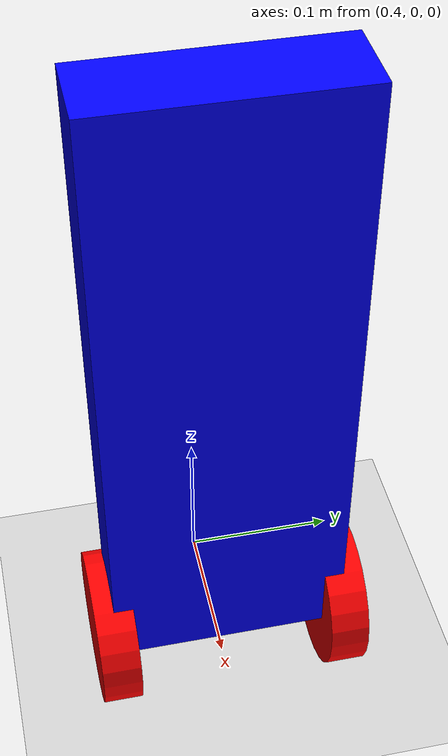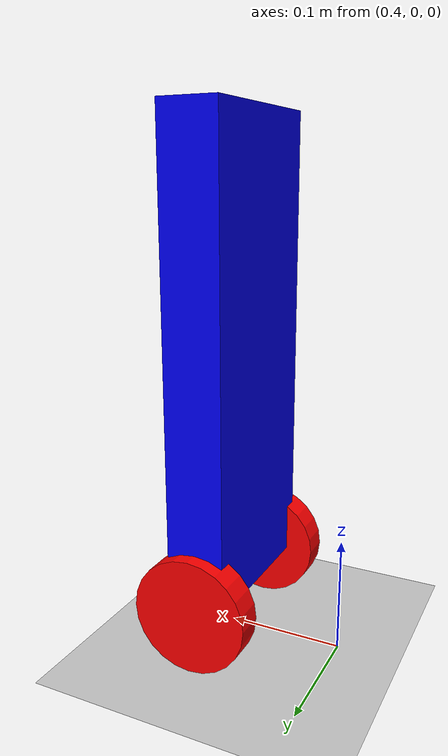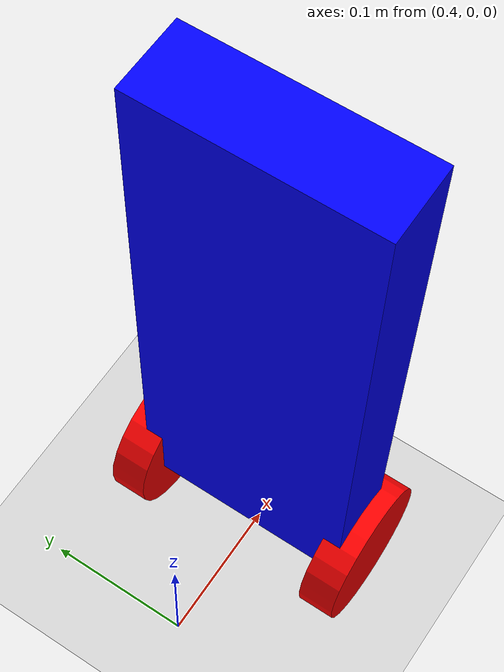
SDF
<?xml version="1.0" ?>
<sdf version="1.8">
    <world name="balancing_robot_world">
        <physics name="1ms" type="ignored">
            <max_step_size>0.001</max_step_size>
            <real_time_factor>1.0</real_time_factor>
        </physics>
        <plugin
            filename="libignition-gazebo-physics-system.so"
            name="ignition::gazebo::systems::Physics">
        </plugin>
        <plugin
            filename="libignition-gazebo-user-commands-system.so"
            name="ignition::gazebo::systems::UserCommands">
        </plugin>
        <plugin
            filename="libignition-gazebo-scene-broadcaster-system.so"
            name="ignition::gazebo::systems::SceneBroadcaster">
        </plugin>
        <plugin filename="libignition-gazebo-imu-system.so"
            name="ignition::gazebo::systems::Imu">
        </plugin>

        <light type="directional" name="sun">
            <cast_shadows>true</cast_shadows>
            <pose>0 0 10 0 0 0</pose>
            <diffuse>0.8 0.8 0.8 1</diffuse>
            <specular>0.2 0.2 0.2 1</specular>
            <attenuation>
                <range>1000</range>
                <constant>0.9</constant>
                <linear>0.01</linear>
                <quadratic>0.001</quadratic>
            </attenuation>
            <direction>-0.5 0.1 -0.9</direction>
        </light>

        <model name="ground_plane">
            <static>true</static>
            <link name="link">
                <collision name="collision">
                <geometry>
                    <plane>
                    <normal>0 0 1</normal>
                    </plane>
                </geometry>
                </collision>
                <visual name="visual">
                <geometry>
                    <plane>
                    <normal>0 0 1</normal>
                    <size>100 100</size>
                    </plane>
                </geometry>
                <material>
                    <ambient>0.8 0.8 0.8 1</ambient>
                    <diffuse>0.8 0.8 0.8 1</diffuse>
                    <specular>0.8 0.8 0.8 1</specular>
                </material>
                </visual>
            </link>
        </model>
        <model name='balancing_robot' canonical_link='chassis'>
            <pose relative_to='world'>0 0 0 0 0 0</pose>
            <link name='chassis'>
                <pose relative_to='__model__'>0.5 0 0.25 0 0 0</pose>
                <inertial>
                    <mass>1.14395</mass>
                    <inertia>
                        <ixx>0.095329</ixx>
                        <ixy>0</ixy>
                        <ixz>0</ixz>
                        <iyy>0.381317</iyy>
                        <iyz>0</iyz>
                        <izz>0.476646</izz>
                    </inertia>
                </inertial>
                <visual name='visual'>
                    <geometry>
                        <box>
                            <size>0.05 0.15 0.4</size>
                        </box>
                    </geometry>
                    <material>
                        <ambient>0.0 0.0 1.0 1</ambient>
                        <diffuse>0.0 0.0 1.0 1</diffuse>
                        <specular>0.0 0.0 1.0 1</specular>
                    </material>
                </visual>
                <collision name='collision'>
                    <geometry>
                        <box>
                            <size>0.05 0.15 0.4</size>
                        </box>
                    </geometry>
                </collision>
				<sensor name="imu_sensor" type="imu">
					<always_on>1</always_on>
					<update_rate>1</update_rate>
					<visualize>true</visualize>
					<topic>imu</topic>
				</sensor>
            </link>
            <link name='left_wheel'>
                <pose relative_to="chassis">0 0.075 -0.2 -1.5707 0 0</pose>
                <inertial>
                    <mass>1</mass>
                    <inertia>
                        <ixx>0.043333</ixx>
                        <ixy>0</ixy>
                        <ixz>0</ixz>
                        <iyy>0.043333</iyy>
                        <iyz>0</iyz>
                        <izz>0.08</izz>
                    </inertia>
                </inertial>
                <visual name='visual'>
                    <geometry>
                        <cylinder>
                            <radius>0.05</radius>
                            <length>0.025</length>
                        </cylinder>
                    </geometry>
                    <material>
                        <ambient>1.0 0.0 0.0 1</ambient>
                        <diffuse>1.0 0.0 0.0 1</diffuse>
                        <specular>1.0 0.0 0.0 1</specular>
                    </material>
                </visual>
                <collision name='collision'>
                    <geometry>
                        <cylinder>
                            <radius>0.05</radius>
                            <length>0.025</length>
                        </cylinder>
                    </geometry>
                </collision>
            </link>
            <link name='right_wheel'>
                <pose relative_to="chassis">0 -0.075 -0.2 -1.5707 0 0</pose>
                <inertial>
                    <mass>1</mass>
                    <inertia>
                        <ixx>0.043333</ixx>
                        <ixy>0</ixy>
                        <ixz>0</ixz>
                        <iyy>0.043333</iyy>
                        <iyz>0</iyz>
                        <izz>0.08</izz>
                    </inertia>
                </inertial>
                <visual name='visual'>
                    <geometry>
                        <cylinder>
                            <radius>0.05</radius>
                            <length>0.025</length>
                        </cylinder>
                    </geometry>
                    <material>
                        <ambient>1.0 0.0 0.0 1</ambient>
                        <diffuse>1.0 0.0 0.0 1</diffuse>
                        <specular>1.0 0.0 0.0 1</specular>
                    </material>
                </visual>
                <collision name='collision'>
                    <geometry>
                        <cylinder>
                            <radius>0.05</radius>
                            <length>0.025</length>
                        </cylinder>
                    </geometry>
                </collision>
            </link>
            <joint name='left_wheel_joint' type='revolute'>
                <pose relative_to='left_wheel'/>
                <parent>chassis</parent>
                <child>left_wheel</child>
                <axis>
                    <xyz expressed_in='__model__'>0 1 0</xyz>
                    <limit>
                        <lower>-1.79769e+308</lower>    <!--negative infinity-->
                        <upper>1.79769e+308</upper>     <!--positive infinity-->
                    </limit>
                </axis>
            </joint>
            <joint name='right_wheel_joint' type='revolute'>
                <pose relative_to='right_wheel'/>
                <parent>chassis</parent>
                <child>right_wheel</child>
                <axis>
                    <xyz expressed_in='__model__'>0 1 0</xyz>
                    <limit>
                        <lower>-1.79769e+308</lower>    <!--negative infinity-->
                        <upper>1.79769e+308</upper>     <!--positive infinity-->
                    </limit>
                </axis>
            </joint>
            <plugin
                filename="libignition-gazebo-diff-drive-system.so"
                name="ignition::gazebo::systems::DiffDrive">
                <left_joint>left_wheel_joint</left_joint>
                <right_joint>right_wheel_joint</right_joint>
                <wheel_separation>0.15</wheel_separation>
                <wheel_radius>0.05</wheel_radius>
                <odom_publish_frequency>1</odom_publish_frequency>
                <topic>cmd_vel</topic>
            </plugin>
        </model>
        <!-- Moving Forward-->
        <plugin filename="libignition-gazebo-triggered-publisher-system.so"
                name="ignition::gazebo::systems::TriggeredPublisher">
            <input type="ignition.msgs.Int32" topic="/keyboard/keypress">
                <match field="data">16777235</match>
            </input>
            <output type="ignition.msgs.Twist" topic="/cmd_vel">
                linear: {x: 0.5}, angular: {z: 0.0}
            </output>
        </plugin>
        <!-- Moving Backward-->
        <plugin filename="libignition-gazebo-triggered-publisher-system.so"
                name="ignition::gazebo::systems::TriggeredPublisher">
            <input type="ignition.msgs.Int32" topic="/keyboard/keypress">
                <match field="data">16777237</match>
            </input>
            <output type="ignition.msgs.Twist" topic="/cmd_vel">
                linear: {x: -0.5}, angular: {z: 0.0}
            </output>
        </plugin>
        <!-- Rotating right-->
        <plugin filename="libignition-gazebo-triggered-publisher-system.so"
                name="ignition::gazebo::systems::TriggeredPublisher">
            <input type="ignition.msgs.Int32" topic="/keyboard/keypress">
                <match field="data">16777236</match>
            </input>
            <output type="ignition.msgs.Twist" topic="/cmd_vel">
                linear: {x: 0.0}, angular: {z: -0.5}
            </output>
        </plugin>
        <!-- Rotating left-->
        <plugin filename="libignition-gazebo-triggered-publisher-system.so"
                name="ignition::gazebo::systems::TriggeredPublisher">
            <input type="ignition.msgs.Int32" topic="/keyboard/keypress">
                <match field="data">16777234</match>
            </input>
            <output type="ignition.msgs.Twist" topic="/cmd_vel">
                linear: {x: 0.0}, angular: {z: 0.5}
            </output>
        </plugin>
    </world>
</sdf>
